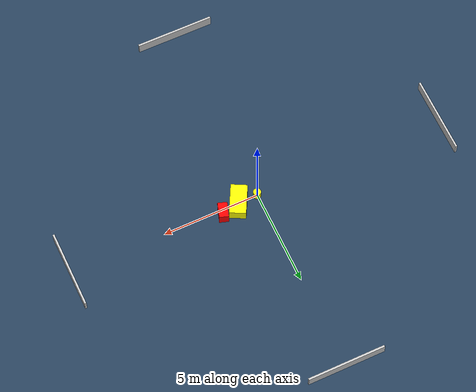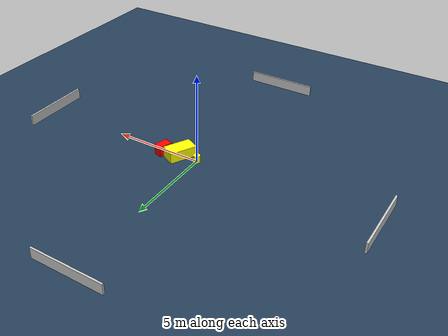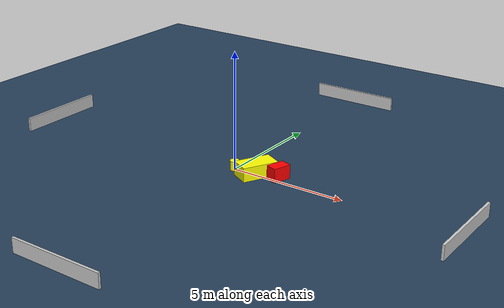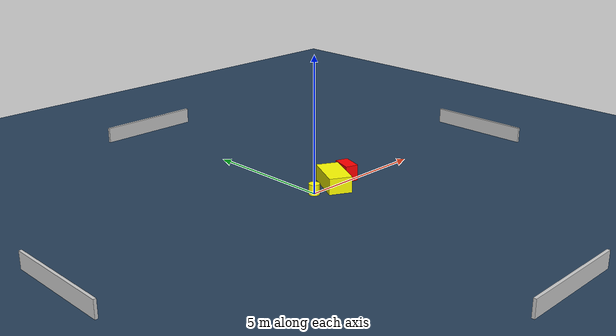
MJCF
<?xml version="1.0" ?>
<mujoco model="generated_environment">
  <option timestep="0.01" integrator="RK4" cone="elliptic"/>
  <default>
    <geom density="1"/>
  </default>
  <asset>
    <texture builtin="gradient" height="3072" name="skybox" rgb1="0.3 0.5 0.7" rgb2="0 0 0" type="skybox" width="512"/>
    <texture builtin="checker" height="300" name="groundplane" rgb1="0.2 0.3 0.4" rgb2="0.1 0.2 0.3" type="2d" width="300"/>
    <material name="groundplane" reflectance="0.2" texrepeat="5 5" texture="groundplane"/>
  </asset>
  <worldbody>
    <light dir="0 0 -1" directional="true" pos="0 0 1.5"/>
    <geom condim="3" friction="0.5 0.005 0.001" material="groundplane" name="floor" pos="0 0 0" size="0 0 0.05" type="plane"/>
    <body name="walls">
      <geom name="wall_1" condim="4" pos="-10.0 0.0 0.3" rgba="0.800000011920929 0.800000011920929 0.800000011920929 1.0" size="0.05 2.0 0.3" type="box"/>
      <geom name="wall_2" condim="4" pos="10.0 0.0 0.3" rgba="0.800000011920929 0.800000011920929 0.800000011920929 1.0" size="0.05 2.0 0.3" type="box"/>
      <geom name="wall_3" condim="4" pos="0.0 -10.0 0.3" rgba="0.800000011920929 0.800000011920929 0.800000011920929 1.0" size="2.0 0.05 0.3" type="box"/>
      <geom name="wall_4" condim="4" pos="0.0 10.0 0.3" rgba="0.800000011920929 0.800000011920929 0.800000011920929 1.0" size="2.0 0.05 0.3" type="box"/>
    </body>
    <body name="robot">
      <joint name="joint_x" type="slide" pos="0 0 0" axis="1 0 0"/>
      <joint name="joint_y" type="slide" pos="0 0 0" axis="0 1 0"/>
      <geom name="robot" type="cylinder" pos="0.0 0.0 0.2" size="0.2 0.2 0.0" mass="5.0" friction="1.0 0.005 0.0001" condim="4" rgba="1.0 1.0 0.0 1.0"/>
    </body>
    <body name="obstacle_1_movable">
      <geom name="obstacle_1_movable" condim="4" pos="1.03448684384928 0.038771103810954444 0.3" euler="0 0 332.2488212215131" friction="0.0 0.005 0.001" rgba="1.0 1.0 0.0 1.0" size="0.4223076039373863 0.7767535841236612 0.3" type="box" mass="0.1"/>
      <joint type="free"/>
    </body>
    <body name="obstacle_2_static">
      <geom name="obstacle_2_static" condim="4" pos="1.9556987060557107 0.2619861336427811 0.3" euler="0 0 72.1303832420477" friction="0.0 0.005 0.001" rgba="1.0 0.0 0.0 1.0" size="0.39355904875830405 0.24476559352259433 0.3" type="box"/>
    </body>
  </worldbody>
  <actuator>
    <motor name="actuator_x" joint="joint_x" gear="1" ctrlrange="-1 1"/>
    <motor name="actuator_y" joint="joint_y" gear="1" ctrlrange="-1 1"/>
  </actuator>
</mujoco>
